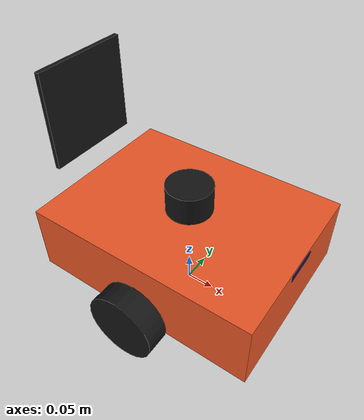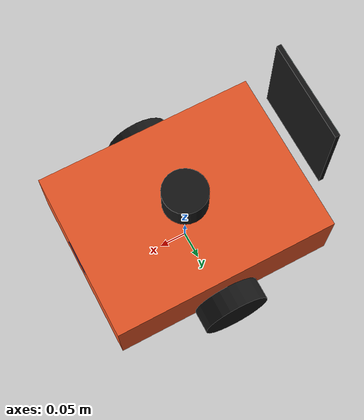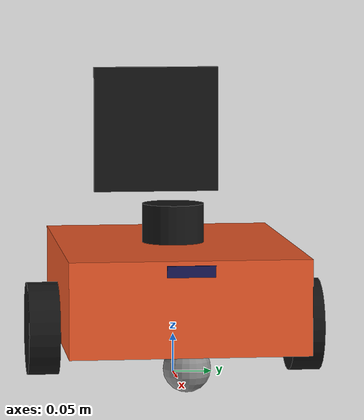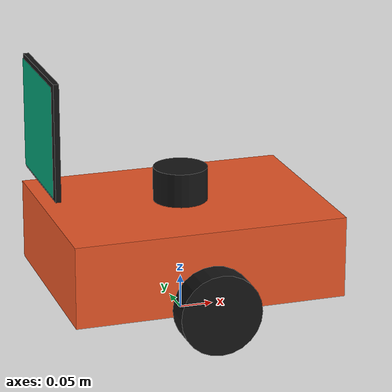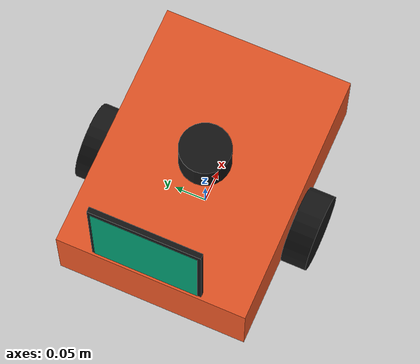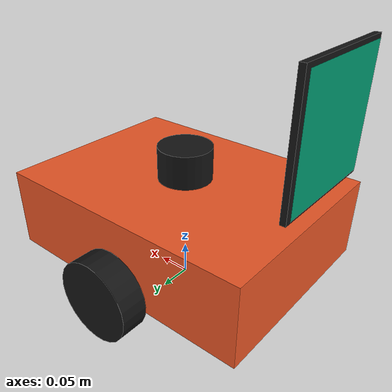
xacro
<?xml version="1.0"?>
<robot name="hunter" xmlns:xacro="http://www.ros.org/wiki/xacro">

  <!-- ===================== Configuration ===================== -->
  <xacro:arg name="prefix" default=""/>          <!-- Gazebo frame-id prefix, e.g. follower/ -->
  <xacro:arg name="topic_ns" default=""/>        <!-- Gazebo topic prefix, e.g. /follower/ -->
  <xacro:arg name="lidar" default="true"/>
  <xacro:arg name="imu" default="true"/>
  <xacro:arg name="rear_tag" default="true"/>
  <xacro:arg name="camera_pitch" default="0.0873"/>
  <xacro:arg name="body" default="orange"/>

  <xacro:include filename="$(find clue_hunt_description)/urdf/inertial_macros.xacro"/>
  <xacro:include filename="$(find clue_hunt_description)/urdf/gazebo.xacro"/>

  <!-- ===================== Dimensions ===================== -->
  <xacro:property name="chassis_x" value="0.40"/>
  <xacro:property name="chassis_y" value="0.30"/>
  <xacro:property name="chassis_z" value="0.12"/>
  <xacro:property name="chassis_mass" value="3.0"/>

  <xacro:property name="wheel_radius" value="0.06"/>
  <xacro:property name="wheel_width" value="0.04"/>
  <xacro:property name="wheel_mass" value="0.3"/>
  <xacro:property name="wheel_offset_y" value="0.17"/>

  <xacro:property name="caster_radius" value="0.03"/>
  <xacro:property name="caster_offset_x" value="0.15"/>

  <!-- camera tilt: positive pitch about +Y points the lens downwards -->
  <xacro:property name="camera_pitch" value="$(arg camera_pitch)"/>

  <!-- ===================== Materials ===================== -->
  <material name="hunter_orange"><color rgba="0.92 0.34 0.15 1"/></material>
  <material name="hunter_blue"><color rgba="0.29 0.42 0.70 1"/></material>
  <material name="hunter_cam"><color rgba="0.10 0.10 0.35 1"/></material>
  <material name="hunter_black"><color rgba="0.08 0.08 0.08 1"/></material>
  <material name="hunter_grey"><color rgba="0.55 0.55 0.55 1"/></material>

  <!-- ===================== Base ===================== -->
  <link name="base_footprint"/>

  <joint name="base_joint" type="fixed">
    <parent link="base_footprint"/>
    <child link="base_link"/>
    <origin xyz="0 0 ${wheel_radius}" rpy="0 0 0"/>
  </joint>

  <link name="base_link">
    <visual>
      <origin xyz="0 0 0.05"/>
      <geometry><box size="${chassis_x} ${chassis_y} ${chassis_z}"/></geometry>
      <material name="hunter_$(arg body)"/>
    </visual>
    <collision>
      <origin xyz="0 0 0.05"/>
      <geometry><box size="${chassis_x} ${chassis_y} ${chassis_z}"/></geometry>
    </collision>
    <xacro:inertial_box mass="${chassis_mass}" x="${chassis_x}" y="${chassis_y}" z="${chassis_z}">
      <origin xyz="0 0 0.05"/>
    </xacro:inertial_box>
  </link>

  <!-- ===================== Wheels ===================== -->
  <xacro:macro name="wheel" params="side reflect">
    <joint name="${side}_wheel_joint" type="continuous">
      <parent link="base_link"/>
      <child link="${side}_wheel_link"/>
      <origin xyz="0 ${reflect * wheel_offset_y} 0" rpy="${-reflect * pi / 2} 0 0"/>
      <axis xyz="0 0 ${reflect}"/>
    </joint>
    <link name="${side}_wheel_link">
      <visual>
        <geometry><cylinder radius="${wheel_radius}" length="${wheel_width}"/></geometry>
        <material name="hunter_black"/>
      </visual>
      <collision>
        <geometry><cylinder radius="${wheel_radius}" length="${wheel_width}"/></geometry>
      </collision>
      <xacro:inertial_cylinder mass="${wheel_mass}" radius="${wheel_radius}" length="${wheel_width}">
        <origin xyz="0 0 0"/>
      </xacro:inertial_cylinder>
    </link>
  </xacro:macro>

  <xacro:wheel side="left" reflect="1"/>
  <xacro:wheel side="right" reflect="-1"/>

  <!-- ===================== Casters (frictionless) ===================== -->
  <xacro:macro name="caster" params="name x">
    <joint name="${name}_caster_joint" type="fixed">
      <parent link="base_link"/>
      <child link="${name}_caster_link"/>
      <origin xyz="${x} 0 ${caster_radius - wheel_radius}"/>
    </joint>
    <link name="${name}_caster_link">
      <visual>
        <geometry><sphere radius="${caster_radius}"/></geometry>
        <material name="hunter_grey"/>
      </visual>
      <collision>
        <geometry><sphere radius="${caster_radius}"/></geometry>
      </collision>
      <xacro:inertial_sphere mass="0.05" radius="${caster_radius}">
        <origin xyz="0 0 0"/>
      </xacro:inertial_sphere>
    </link>
    <gazebo reference="${name}_caster_link">
      <mu1>0.001</mu1>
      <mu2>0.001</mu2>
    </gazebo>
  </xacro:macro>

  <xacro:caster name="front" x="${caster_offset_x}"/>
  <xacro:caster name="rear" x="${-caster_offset_x}"/>

  <!-- ===================== LiDAR ===================== -->
  <xacro:if value="$(arg lidar)">
  <joint name="lidar_joint" type="fixed">
    <parent link="base_link"/>
    <child link="lidar_link"/>
    <origin xyz="0 0 0.135" rpy="0 0 0"/>
  </joint>
  <link name="lidar_link">
    <visual>
      <geometry><cylinder radius="0.04" length="0.05"/></geometry>
      <material name="hunter_black"/>
    </visual>
    <collision>
      <geometry><cylinder radius="0.04" length="0.05"/></geometry>
    </collision>
    <xacro:inertial_cylinder mass="0.1" radius="0.04" length="0.05">
      <origin xyz="0 0 0"/>
    </xacro:inertial_cylinder>
  </link>
  </xacro:if>

  <!-- ===================== Camera ===================== -->
  <joint name="camera_joint" type="fixed">
    <parent link="base_link"/>
    <child link="camera_link"/>
    <origin xyz="0.19 0 0.09" rpy="0 ${camera_pitch} 0"/>
  </joint>
  <link name="camera_link">
    <visual>
      <geometry><box size="0.02 0.06 0.03"/></geometry>
      <material name="hunter_cam"/>
    </visual>
    <collision>
      <geometry><box size="0.02 0.06 0.03"/></geometry>
    </collision>
    <xacro:inertial_box mass="0.05" x="0.02" y="0.06" z="0.03">
      <origin xyz="0 0 0"/>
    </xacro:inertial_box>
  </link>

  <!-- Optical frame: z forward, x right, y down (what OpenCV expects) -->
  <joint name="cam_optical_joint" type="fixed">
    <parent link="camera_link"/>
    <child link="cam_optical_link"/>
    <origin xyz="0 0 0" rpy="${-pi / 2} 0 ${-pi / 2}"/>
  </joint>
  <link name="cam_optical_link"/>

  <!-- ===================== IMU ===================== -->
  <xacro:if value="$(arg imu)">
  <joint name="imu_joint" type="fixed">
    <parent link="base_link"/>
    <child link="imu_link"/>
    <origin xyz="0 0 0.02" rpy="0 0 0"/>
  </joint>
  <link name="imu_link"/>
  </xacro:if>

  <xacro:if value="$(arg rear_tag)">
  <joint name="tag_joint" type="fixed">
    <parent link="base_link"/>
    <child link="tag_link"/>
    <origin xyz="-0.21 0 0.24" rpy="0 0 ${pi}"/>
  </joint>
  <link name="tag_link">
    <visual>
      <geometry><mesh filename="file://$(find clue_hunt_description)/meshes/leader_tag.obj"/></geometry>
    </visual>
    <visual>
      <origin xyz="-0.005 0 0"/>
      <geometry><box size="0.008 0.17 0.17"/></geometry>
      <material name="hunter_black"/>
    </visual>
  </link>
  </xacro:if>

  <!-- Sensors and plugins live in gazebo.xacro -->
  <xacro:hunter_gazebo/>

</robot>

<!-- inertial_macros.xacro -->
<robot xmlns:xacro="http://www.ros.org/wiki/xacro">

  <xacro:macro name="inertial_box" params="mass x y z *origin">
    <inertial>
      <xacro:insert_block name="origin"/>
      <mass value="${mass}"/>
      <inertia ixx="${mass * (y*y + z*z) / 12}" ixy="0" ixz="0"
               iyy="${mass * (x*x + z*z) / 12}" iyz="0"
               izz="${mass * (x*x + y*y) / 12}"/>
    </inertial>
  </xacro:macro>

  <xacro:macro name="inertial_cylinder" params="mass radius length *origin">
    <inertial>
      <xacro:insert_block name="origin"/>
      <mass value="${mass}"/>
      <inertia ixx="${mass * (3*radius*radius + length*length) / 12}" ixy="0" ixz="0"
               iyy="${mass * (3*radius*radius + length*length) / 12}" iyz="0"
               izz="${mass * radius * radius / 2}"/>
    </inertial>
  </xacro:macro>

  <xacro:macro name="inertial_sphere" params="mass radius *origin">
    <inertial>
      <xacro:insert_block name="origin"/>
      <mass value="${mass}"/>
      <inertia ixx="${2 * mass * radius * radius / 5}" ixy="0" ixz="0"
               iyy="${2 * mass * radius * radius / 5}" iyz="0"
               izz="${2 * mass * radius * radius / 5}"/>
    </inertial>
  </xacro:macro>

</robot>
